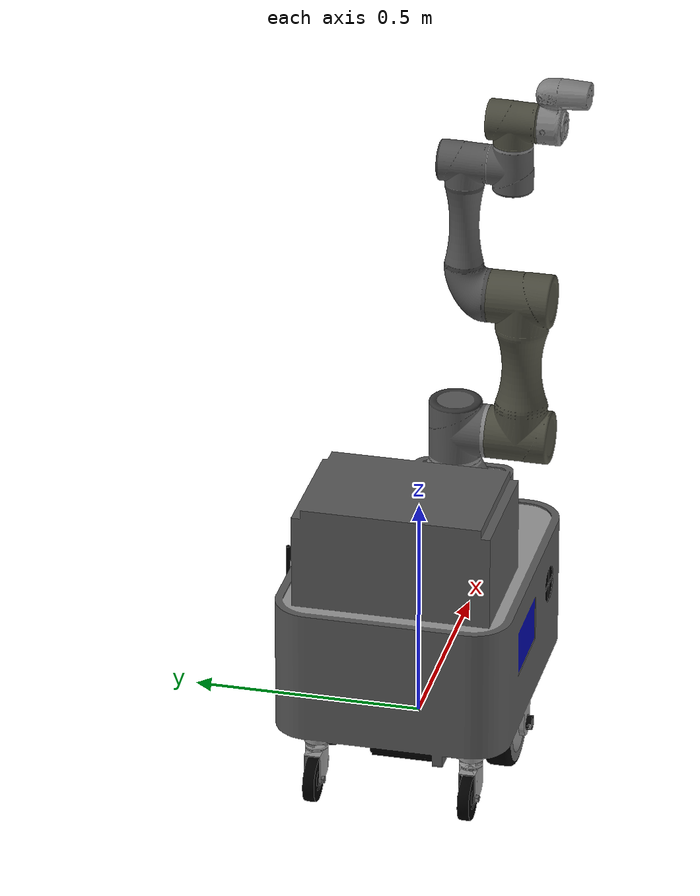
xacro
<?xml version="1.0"?>
<robot name="mars_lite"
  xmlns:xacro="http://www.ros.org/wiki/xacro">

  <!-- Mobile platform properties -->
  <xacro:property name="mob_base_length" value="0.780"/>
  <xacro:property name="mob_base_width" value="0.510"/>
  <xacro:property name="mob_base_height" value="0.37"/>
  <xacro:property name="wheel_radius" value="0.1016"/>
  <xacro:property name="wheels_distance" value="0.393"/>
  <xacro:property name="base_to_wheels_axel" value="0.01045"/>
  <xacro:property name="mob_base_lower_plate_length" value="0.630"/>

  <!-- arm positioning -->
  <xacro:property name="tm_x_offset" value="0.350"/>

  <material name="blue">
    <color rgba="0 0 0.8 1"/>
  </material>
  <material name="black">
    <color rgba="0 0 0 1"/>
  </material>
  <material name="white">
    <color rgba="1 1 1 1"/>
  </material>
  <material name="lightgrey">
    <color rgba="0.7 0.7 0.7 1.0"/>
  </material>

  <xacro:macro name="default_inertial" params="mass">
    <inertial>
      <mass value="${mass}" />
      <inertia ixx="1.0" ixy="0.0" ixz="0.0" iyy="1.0" iyz="0.0" izz="1.0" />
    </inertial>
  </xacro:macro>

  <!-- Base Link -->
  <link name="base_link">
    <visual>
      <origin rpy="0 0 0" xyz="0 0 0"/>
      <geometry>
          <mesh filename="package://mars_lite_description/meshes/mob_plat.dae"/>
      </geometry>
    </visual>
    <collision>
      <origin rpy="0 0 0" xyz="${mob_base_length/2-mob_base_lower_plate_length/2} 0 ${mob_base_height/2}"/>
      <geometry>
        <box size="${mob_base_length} ${mob_base_width} ${mob_base_height}"/>
      </geometry>
    </collision>
  </link>

  <!-- Wheels -->
  <xacro:macro name="wheel" params="prefix reflect">
    <link name="${prefix}_wheel">
      <visual>
        <origin xyz="0 0 0" rpy="0 0 0"/>
        <geometry>
          <mesh filename="package://mars_lite_description/meshes/wheel.dae"/>
        </geometry>
      </visual>
      <collision>
        <origin xyz="0 0 0" rpy="${pi/2} 0 0" />
        <geometry>
          <cylinder radius="${wheel_radius}" length="0.03"/>
        </geometry>
      </collision>
      <xacro:default_inertial mass="1"/>
    </link>
    <joint name="${prefix}_wheel" type="continuous">
      <axis xyz="0 1 0" rpy="0 0 0" />
      <parent link="base_link"/>
      <child link="${prefix}_wheel"/>
      <origin xyz="0 ${reflect*wheels_distance/2} 0" rpy="0 0 0"/>
    </joint>
  </xacro:macro>
  <xacro:wheel prefix="right" reflect="-1"/>
  <xacro:wheel prefix="left" reflect="1"/>

  <!-- tm -->
  <xacro:include filename="$(find tm_description)/urdf/tm700.urdf.xacro"/>
  <!-- arm -->
  <xacro:tm700_robot prefix="tm_" joint_limited="true"/>

  <joint name="base_link_to_tm_base_link" type="fixed">
    <parent link="base_link" />
    <child link = "tm_base" />
    <origin xyz="${tm_x_offset} 0.0 ${mob_base_height}" rpy="0.0 0.0 0.0" />
  </joint>

</robot>

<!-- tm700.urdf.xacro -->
<robot xmlns:xacro="http://www.ros.org/wiki/xacro">

  <!-- transmission -->
  <xacro:include filename="$(find tm_description)/urdf/tm.transmission.xacro" />

  <!-- Mass parameters -->
  <!--xacro:property name="pi" value="3.14159265" /-->

  <xacro:property name="base_mass" value="1.0" />
  <xacro:property name="shoulder_mass" value="4.5" />
  <xacro:property name="arm_1_mass" value="10.5" />
  <xacro:property name="arm_2_mass" value="2.1" />
  <xacro:property name="wrist_1_mass" value="1.45" />
  <xacro:property name="wrist_2_mass" value="1.45" />
  <xacro:property name="wrist_3_mass" value="0.4" />

  <!-- Kinematic model -->
  <!-- Properties from tmcontrol.conf -->
  <xacro:property name="tm_d1" value="0.1451" />
  <xacro:property name="tm_a2" value="0.3290" />
  <xacro:property name="tm_a3" value="0.3115" />
  <xacro:property name="tm_d4" value="0.1222" />
  <xacro:property name="tm_d5" value="0.1060" />
  <xacro:property name="tm_d6" value="0.1144" />

  <!-- offsets for shoulder/elbow joints -->
  <xacro:property name="shoulder_offset" value="-0.146" />  <!-- measured from model -->
  <xacro:property name="elbow_offset" value="0.1298" /> <!-- measured from model -->
  <xacro:property name="wrist_offset" value="${-tm_d4 - elbow_offset - shoulder_offset}" />

  <!-- link lengths used in model -->
  <xacro:property name="shoulder_height" value="${tm_d1}" />
  <xacro:property name="arm_1_length" value="${tm_a2}" />
  <xacro:property name="arm_2_length" value="${tm_a3}" />
  <xacro:property name="wrist_1_length" value="tm_d5}" />
  <xacro:property name="wrist_2_length" value="${tm_d5}" />
  <xacro:property name="wrist_3_length" value="0.0565" />
  <xacro:property name="ee_length" value="${tm_d6 - wrist_3_length}" />

  <xacro:macro name="cylinder_inertial" params="radius length mass *origin">
    <inertial>
      <mass value="${mass}" />
      <xacro:insert_block name="origin" />
      <inertia ixx="${0.0833333 * mass * (3 * radius * radius + length * length)}" ixy="0.0" ixz="0.0"
        iyy="${0.0833333 * mass * (3 * radius * radius + length * length)}" iyz="0.0"
        izz="${0.5 * mass * radius * radius}" />
    </inertial>
  </xacro:macro>

  <xacro:macro name="tm700_robot" params="prefix joint_limited">

    <!-- transmission prefix -->
    <xacro:tm_arm_transmission prefix="${prefix}" />

    <link name="${prefix}base_link" >
      <visual>
        <geometry>
	  <mesh filename="package://tm_description/meshes/tm700/visual/Base.dae" />
        </geometry>

      </visual>
      <collision>
        <geometry>
	  <mesh filename="package://tm_description/meshes/tm700/collision/base.STL" />
        </geometry>
      </collision>

      <xacro:cylinder_inertial radius="0.06" length="0.05" mass="${base_mass}">
        <origin xyz="0.0 0.0 0.0" rpy="0 0 0" />
      </xacro:cylinder_inertial>

    </link>

    <link name="${prefix}shoulder_1_link">
      <visual>
        <geometry>
	  <mesh filename="package://tm_description/meshes/tm700/visual/Shoulder1.dae" />
        </geometry>

      </visual>
      <collision>
        <geometry>
	  <mesh filename="package://tm_description/meshes/tm700/collision/shoulder_1.STL" />
        </geometry>
      </collision>

      <xacro:cylinder_inertial radius="0.06" length="0.15" mass="${shoulder_mass}">
        <origin xyz="0.0 0.0 0.0" rpy="0 0 0" />
      </xacro:cylinder_inertial>

    </link>

    <joint name="${prefix}shoulder_1_joint" type="revolute">
      <parent link="${prefix}base_link" />
      <child link = "${prefix}shoulder_1_link" />
      <origin xyz="0.0 0.0 ${shoulder_height}" rpy="${-0.5 * pi} 0.0 0.0" />
      <axis xyz="0 -1 0" />
      <xacro:unless value="${joint_limited}">
        <limit lower="${-2.0 * pi}" upper="${2.0 * pi}" effort="150.0" velocity="3.15"/>
      </xacro:unless>
      <xacro:if value="${joint_limited}">
        <limit lower="${-pi}" upper="${pi}" effort="150.0" velocity="3.15"/>
      </xacro:if>
      <dynamics damping="0.0" friction="0.0"/>
    </joint>

    <link name="${prefix}arm_1_link">
      <visual>
        <geometry>
	  <mesh filename="package://tm_description/meshes/tm700/visual/Arm1.dae" />
        </geometry>
        <material name="DarkOlive">
          <color rgba="0.3 0.3 0.25 1.0"/>
        </material>
      </visual>
      <collision>
        <geometry>
	  <mesh filename="package://tm_description/meshes/tm700/collision/arm_1.STL" />
        </geometry>
      </collision>

      <xacro:cylinder_inertial radius="0.06" length="0.56" mass="${arm_1_mass}">
        <origin xyz="0.0 0.0 0.28" rpy="0 0 0" />
      </xacro:cylinder_inertial>

    </link>

    <joint name="${prefix}shoulder_2_joint" type="revolute">
      <parent link="${prefix}shoulder_1_link" />
      <child link = "${prefix}arm_1_link" />
      <origin xyz="0.0 0.0 ${shoulder_offset}" rpy="0.0 0.0 ${-0.5 * pi}" />
      <axis xyz="0 0 1" />
      <xacro:unless value="${joint_limited}">
        <limit lower="${-1.5 * pi}" upper="${1.5 * pi}" effort="150.0" velocity="3.15"/>
      </xacro:unless>
      <xacro:if value="${joint_limited}">
        <limit lower="${-pi}" upper="${pi}" effort="150.0" velocity="3.15"/>
      </xacro:if>
      <dynamics damping="0.0" friction="0.0"/>
    </joint>

    <link name="${prefix}arm_2_link">
      <visual>
        <geometry>
	        <mesh filename="package://tm_description/meshes/tm700/visual/Arm2.dae" />
        </geometry>
      </visual>

      <collision>
        <geometry>
	  <mesh filename="package://tm_description/meshes/tm700/collision/arm_2.STL" />
        </geometry>
      </collision>

      <xacro:cylinder_inertial radius="0.06" length="0.5" mass="${arm_2_mass}">
        <origin xyz="0.0 0.0 0.25" rpy="0 0 0" />
      </xacro:cylinder_inertial>

    </link>

    <joint name="${prefix}elbow_1_joint" type="revolute">
      <parent link="${prefix}arm_1_link" />
      <child link = "${prefix}arm_2_link" />
      <origin xyz="${arm_1_length} 0.0 ${elbow_offset}" rpy="0.0 0.0 0.0" />
      <axis xyz="0 0 1" />
      <xacro:unless value="${joint_limited}">
        <limit lower="${-1.5 * pi}" upper="${1.5 * pi}" effort="150.0" velocity="3.15"/>
      </xacro:unless>
      <xacro:if value="${joint_limited}">
        <limit lower="${-pi}" upper="${pi}" effort="150.0" velocity="3.15"/>
      </xacro:if>
      <dynamics damping="0.0" friction="0.0"/>
    </joint>

    <link name="${prefix}wrist_1_link">
      <visual>
        <geometry>
	  <mesh filename="package://tm_description/meshes/tm700/visual/Wrist1.dae" />
        </geometry>

      </visual>
      <collision>
        <geometry>
	  <mesh filename="package://tm_description/meshes/tm700/collision/wrist_1.STL" />
        </geometry>
      </collision>

      <xacro:cylinder_inertial radius="0.6" length="0.12" mass="${wrist_1_mass}">
        <origin xyz="0.0 0.0 0.0" rpy="0 0 0" />
      </xacro:cylinder_inertial>

    </link>

    <joint name="${prefix}wrist_1_joint" type="revolute">
      <parent link="${prefix}arm_2_link" />
      <child link = "${prefix}wrist_1_link" />
      <origin xyz="${arm_2_length} 0.0 ${wrist_offset}" rpy="${0.5 * pi} 0.0 ${0.5 * pi}" />
      <axis xyz="0 1 0" />
      <xacro:unless value="${joint_limited}">
        <limit lower="${-2.0 * pi}" upper="${2.0 * pi}" effort="28.0" velocity="3.2"/>
      </xacro:unless>
      <xacro:if value="${joint_limited}">
        <limit lower="${-pi}" upper="${pi}" effort="28.0" velocity="3.2"/>
      </xacro:if>
      <dynamics damping="0.0" friction="0.0"/>
    </joint>

    <link name="${prefix}wrist_2_link">
      <visual>
        <geometry>
	  <mesh filename="package://tm_description/meshes/tm700/visual/Wrist2.dae" />
        </geometry>
        <material name="DarkOlive">
          <color rgba="0.3 0.3 0.25 1.0"/>
        </material>
      </visual>
      <collision>
        <geometry>
	  <mesh filename="package://tm_description/meshes/tm700/collision/wrist_2.STL" />
        </geometry>
      </collision>

      <xacro:cylinder_inertial radius="0.6" length="0.12" mass="${wrist_2_mass}">
        <origin xyz="0.0 0.0 0.0" rpy="0 0 0" />
      </xacro:cylinder_inertial>

    </link>

    <joint name="${prefix}wrist_2_joint" type="revolute">
      <parent link="${prefix}wrist_1_link" />
      <child link = "${prefix}wrist_2_link" />
      <origin xyz="0.0 0.0 ${wrist_2_length}" rpy="${0.5 * pi} 0.0 0.0" />
      <axis xyz="0 1 0" />
      <xacro:unless value="${joint_limited}">
        <limit lower="${-2.0 * pi}" upper="${2.0 * pi}" effort="28.0" velocity="3.2"/>
      </xacro:unless>
      <xacro:if value="${joint_limited}">
        <limit lower="${-pi}" upper="${pi}" effort="28.0" velocity="3.2"/>
      </xacro:if>
      <dynamics damping="0.0" friction="0.0"/>
    </joint>

    <link name="${prefix}wrist_3_link">
      <visual>
        <geometry>
	  <mesh filename="package://tm_description/meshes/tm700/visual/Wrist3.dae" />
        </geometry>
	<origin xyz="0 0 0.015" rpy="0 0 0"/>
        <material name="Grey">
          <color rgba="0.5 0.5 0.5 1.0"/>
        </material>
      </visual>
      <collision>
        <geometry>
	  <mesh filename="package://tm_description/meshes/tm700/collision/wrist_3.STL" />
        </geometry>
      </collision>

      <xacro:cylinder_inertial radius="0.6" length="0.12" mass="${wrist_3_mass}">
        <origin xyz="0.0 0.0 0.0" rpy="0 0 0" />
      </xacro:cylinder_inertial>

    </link>

    <joint name="${prefix}wrist_3_joint" type="revolute">
      <parent link="${prefix}wrist_2_link" />
      <child link = "${prefix}wrist_3_link" />
      <origin xyz="0.0 0.0 ${wrist_3_length}" rpy="0.0 0.0 0.0" />
      <axis xyz="0 0 1" />
      <xacro:unless value="${joint_limited}">
        <limit lower="${-2.0 * pi}" upper="${2.0 * pi}" effort="28.0" velocity="3.2"/>
      </xacro:unless>
      <xacro:if value="${joint_limited}">
        <limit lower="${-pi}" upper="${pi}" effort="28.0" velocity="3.2"/>
      </xacro:if>
      <dynamics damping="0.0" friction="0.0"/>
    </joint>

    <link name="${prefix}tip_link">
      <collision>
        <geometry>
          <box size="0.05 0.05 0.05"/>
        </geometry>
        <origin xyz="0 0 0.025" rpy="0 0 0"/>
      </collision>
    </link>

    <joint name="${prefix}tip_fixed_joint" type="fixed">
      <parent link="${prefix}wrist_3_link" />
      <child link = "${prefix}tip_link" />
      <origin xyz="0.0 0.0 ${ee_length}" rpy="0.0 0.0 0.0" />
    </joint>

    <!-- ROS base to TM 'base_link' Coordinates transform -->
    <link name="${prefix}base"/>
    <joint name="${prefix}base-base_link" type="fixed">
      <origin xyz="0 0 0" rpy="0 0 0"/>
      <parent link="${prefix}base"/>
      <child link="${prefix}base_link"/>
    </joint>

    <!-- Frame coincident with all-zeros TCP on TM controller -->
    <link name="${prefix}tool0"/>
    <joint name="${prefix}tip_link-tool0" type="fixed">
      <parent link="${prefix}tip_link"/>
      <child link="${prefix}tool0"/>
      <origin xyz="0 0 0" rpy="0 0 0"/>
    </joint>

  </xacro:macro>

</robot>
